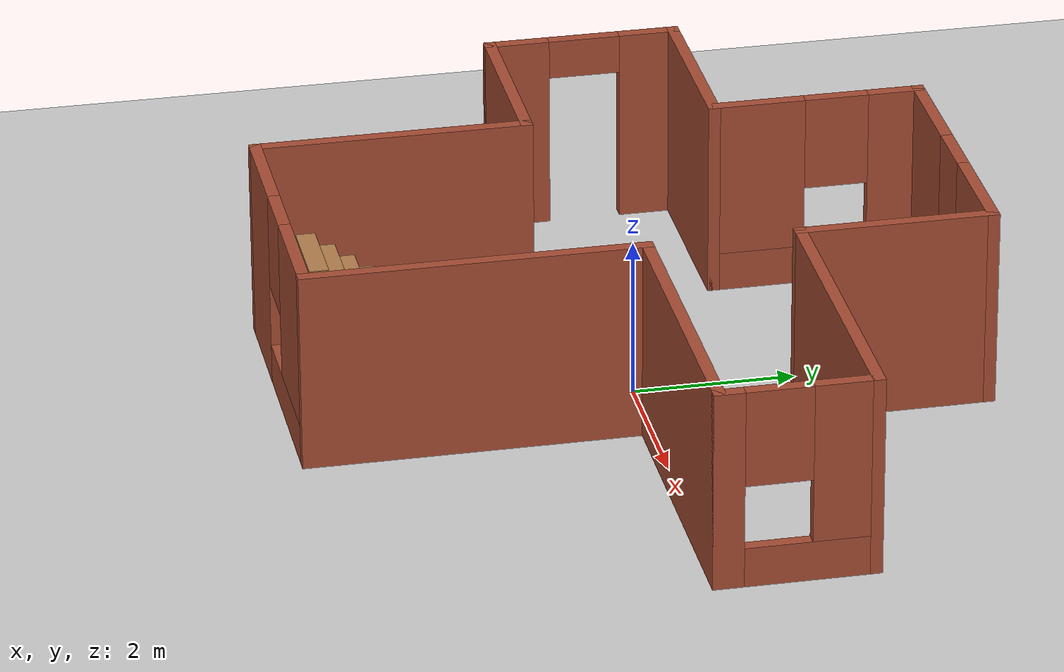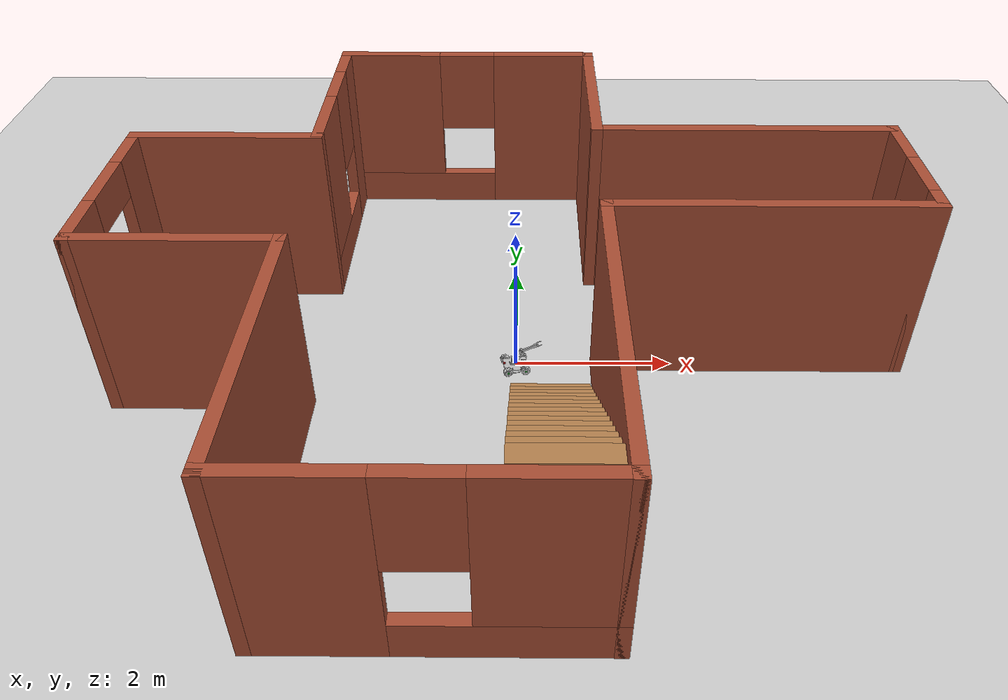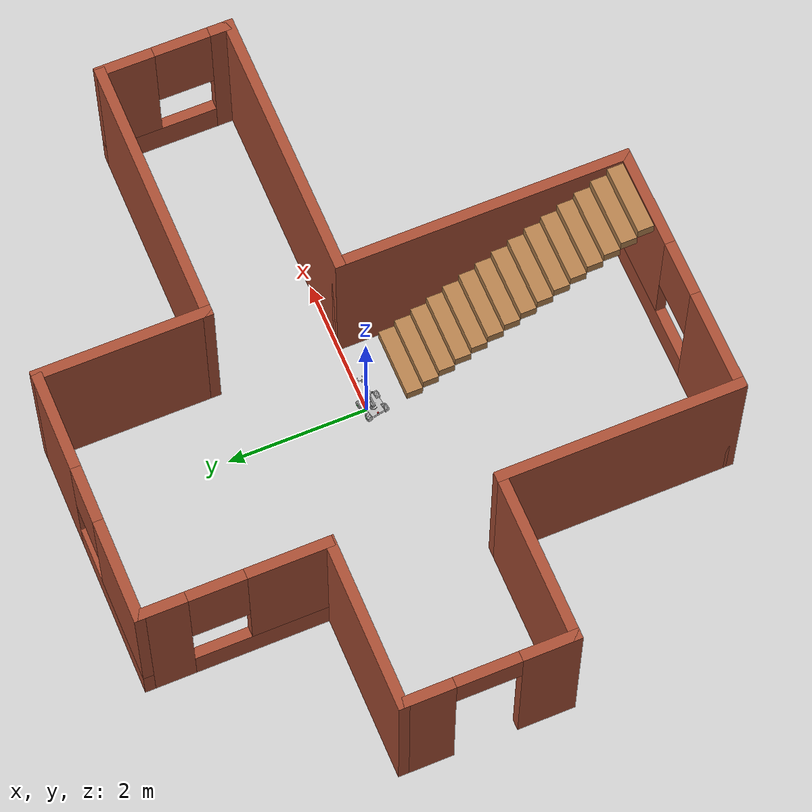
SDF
<sdf version="1.7">
 <world name="default">
  <model name="ground_plane">
   <static>1</static>
   <link name="link">
    <collision name="collision">
     <geometry><plane><normal>0 0 1</normal><size>100 100</size></plane></geometry>
     <surface><friction><ode><mu>100</mu><mu2>50</mu2></ode></friction></surface>
    </collision>
    <visual name="visual">
     <cast_shadows>0</cast_shadows>
     <geometry><plane><normal>0 0 1</normal><size>100 100</size></plane></geometry>
     <material>
      <script><uri>file://media/materials/scripts/gazebo.material</uri><name>Gazebo/Grey</name></script>
     </material>
    </visual>
   </link>
  </model>
  <light name="sun" type="directional">
   <pose>0 0 10 0 -0 0</pose>
   <diffuse>0.8 0.8 0.8 1</diffuse>
   <specular>0.2 0.2 0.2 1</specular>
   <attenuation>
    <range>1000</range>
    <constant>0.9</constant>
    <linear>0.01</linear>
    <quadratic>0.001</quadratic>
   </attenuation>
   <direction>-0.5 0.1 -0.9</direction>
   <spot><inner_angle>0</inner_angle><outer_angle>0</outer_angle><falloff>0</falloff></spot>
  </light>
  <model name="building">
   <pose>-0.00595 -0.002894 0 0 -0 0</pose>
   <link name="Stairs_0">
    <visual name="Stairs_0_Visual_0">
     <pose>0.446582 -0.679804 0.083333 0 -0 0</pose>
     <geometry><box><size>1 0.233333 0.166667</size></box></geometry>
     <material>
      <script><uri>file://media/materials/scripts/gazebo.material</uri><name>Gazebo/Wood</name></script>
      <ambient>1 1 1 1</ambient>
     </material>
     <meta><layer>0</layer></meta>
    </visual>
    <collision name="Stairs_0_Collision_0">
     <geometry><box><size>1 0.233333 0.166667</size></box></geometry>
     <pose>0.446582 -0.679804 0.083333 0 -0 0</pose>
    </collision>
    <visual name="Stairs_0_Visual_1">
     <pose>0.446582 -0.913137 0.25 0 -0 0</pose>
     <geometry><box><size>1 0.233333 0.166667</size></box></geometry>
     <material>
      <script><uri>file://media/materials/scripts/gazebo.material</uri><name>Gazebo/Wood</name></script>
      <ambient>1 1 1 1</ambient>
     </material>
     <meta><layer>0</layer></meta>
    </visual>
    <collision name="Stairs_0_Collision_1">
     <geometry><box><size>1 0.233333 0.166667</size></box></geometry>
     <pose>0.446582 -0.913137 0.25 0 -0 0</pose>
    </collision>
    <visual name="Stairs_0_Visual_2">
     <pose>0.446582 -1.14647 0.416667 0 -0 0</pose>
     <geometry><box><size>1 0.233333 0.166667</size></box></geometry>
     <material>
      <script><uri>file://media/materials/scripts/gazebo.material</uri><name>Gazebo/Wood</name></script>
      <ambient>1 1 1 1</ambient>
     </material>
     <meta><layer>0</layer></meta>
    </visual>
    <collision name="Stairs_0_Collision_2">
     <geometry><box><size>1 0.233333 0.166667</size></box></geometry>
     <pose>0.446582 -1.14647 0.416667 0 -0 0</pose>
    </collision>
    <visual name="Stairs_0_Visual_3">
     <pose>0.446582 -1.3798 0.583333 0 -0 0</pose>
     <geometry><box><size>1 0.233333 0.166667</size></box></geometry>
     <material>
      <script><uri>file://media/materials/scripts/gazebo.material</uri><name>Gazebo/Wood</name></script>
      <ambient>1 1 1 1</ambient>
     </material>
     <meta><layer>0</layer></meta>
    </visual>
    <collision name="Stairs_0_Collision_3">
     <geometry><box><size>1 0.233333 0.166667</size></box></geometry>
     <pose>0.446582 -1.3798 0.583333 0 -0 0</pose>
    </collision>
    <visual name="Stairs_0_Visual_4">
     <pose>0.446582 -1.61314 0.75 0 -0 0</pose>
     <geometry><box><size>1 0.233333 0.166667</size></box></geometry>
     <material>
      <script><uri>file://media/materials/scripts/gazebo.material</uri><name>Gazebo/Wood</name></script>
      <ambient>1 1 1 1</ambient>
     </material>
     <meta><layer>0</layer></meta>
    </visual>
    <collision name="Stairs_0_Collision_4">
     <geometry><box><size>1 0.233333 0.166667</size></box></geometry>
     <pose>0.446582 -1.61314 0.75 0 -0 0</pose>
    </collision>
    <visual name="Stairs_0_Visual_5">
     <pose>0.446582 -1.84647 0.916667 0 -0 0</pose>
     <geometry><box><size>1 0.233333 0.166667</size></box></geometry>
     <material>
      <script><uri>file://media/materials/scripts/gazebo.material</uri><name>Gazebo/Wood</name></script>
      <ambient>1 1 1 1</ambient>
     </material>
     <meta><layer>0</layer></meta>
    </visual>
    <collision name="Stairs_0_Collision_5">
     <geometry><box><size>1 0.233333 0.166667</size></box></geometry>
     <pose>0.446582 -1.84647 0.916667 0 -0 0</pose>
    </collision>
    <visual name="Stairs_0_Visual_6">
     <pose>0.446582 -2.0798 1.08333 0 -0 0</pose>
     <geometry><box><size>1 0.233333 0.166667</size></box></geometry>
     <material>
      <script><uri>file://media/materials/scripts/gazebo.material</uri><name>Gazebo/Wood</name></script>
      <ambient>1 1 1 1</ambient>
     </material>
     <meta><layer>0</layer></meta>
    </visual>
    <collision name="Stairs_0_Collision_6">
     <geometry><box><size>1 0.233333 0.166667</size></box></geometry>
     <pose>0.446582 -2.0798 1.08333 0 -0 0</pose>
    </collision>
    <visual name="Stairs_0_Visual_7">
     <pose>0.446582 -2.31314 1.25 0 -0 0</pose>
     <geometry><box><size>1 0.233333 0.166667</size></box></geometry>
     <material>
      <script><uri>file://media/materials/scripts/gazebo.material</uri><name>Gazebo/Wood</name></script>
      <ambient>1 1 1 1</ambient>
     </material>
     <meta><layer>0</layer></meta>
    </visual>
    <collision name="Stairs_0_Collision_7">
     <geometry><box><size>1 0.233333 0.166667</size></box></geometry>
     <pose>0.446582 -2.31314 1.25 0 -0 0</pose>
    </collision>
    <visual name="Stairs_0_Visual_8">
     <pose>0.446582 -2.54647 1.41667 0 -0 0</pose>
     <geometry><box><size>1 0.233333 0.166667</size></box></geometry>
     <material>
      <script><uri>file://media/materials/scripts/gazebo.material</uri><name>Gazebo/Wood</name></script>
      <ambient>1 1 1 1</ambient>
     </material>
     <meta><layer>0</layer></meta>
    </visual>
    <collision name="Stairs_0_Collision_8">
     <geometry><box><size>1 0.233333 0.166667</size></box></geometry>
     <pose>0.446582 -2.54647 1.41667 0 -0 0</pose>
    </collision>
    <visual name="Stairs_0_Visual_9">
     <pose>0.446582 -2.7798 1.58333 0 -0 0</pose>
     <geometry><box><size>1 0.233333 0.166667</size></box></geometry>
     <material>
      <script><uri>file://media/materials/scripts/gazebo.material</uri><name>Gazebo/Wood</name></script>
      <ambient>1 1 1 1</ambient>
     </material>
     <meta><layer>0</layer></meta>
    </visual>
    <collision name="Stairs_0_Collision_9">
     <geometry><box><size>1 0.233333 0.166667</size></box></geometry>
     <pose>0.446582 -2.7798 1.58333 0 -0 0</pose>
    </collision>
    <visual name="Stairs_0_Visual_10">
     <pose>0.446582 -3.01314 1.75 0 -0 0</pose>
     <geometry><box><size>1 0.233333 0.166667</size></box></geometry>
     <material>
      <script><uri>file://media/materials/scripts/gazebo.material</uri><name>Gazebo/Wood</name></script>
      <ambient>1 1 1 1</ambient>
     </material>
     <meta><layer>0</layer></meta>
    </visual>
    <collision name="Stairs_0_Collision_10">
     <geometry><box><size>1 0.233333 0.166667</size></box></geometry>
     <pose>0.446582 -3.01314 1.75 0 -0 0</pose>
    </collision>
    <visual name="Stairs_0_Visual_11">
     <pose>0.446582 -3.24647 1.91667 0 -0 0</pose>
     <geometry><box><size>1 0.233333 0.166667</size></box></geometry>
     <material>
      <script><uri>file://media/materials/scripts/gazebo.material</uri><name>Gazebo/Wood</name></script>
      <ambient>1 1 1 1</ambient>
     </material>
     <meta><layer>0</layer></meta>
    </visual>
    <collision name="Stairs_0_Collision_11">
     <geometry><box><size>1 0.233333 0.166667</size></box></geometry>
     <pose>0.446582 -3.24647 1.91667 0 -0 0</pose>
    </collision>
    <visual name="Stairs_0_Visual_12">
     <pose>0.446582 -3.4798 2.08333 0 -0 0</pose>
     <geometry><box><size>1 0.233333 0.166667</size></box></geometry>
     <material>
      <script><uri>file://media/materials/scripts/gazebo.material</uri><name>Gazebo/Wood</name></script>
      <ambient>1 1 1 1</ambient>
     </material>
     <meta><layer>0</layer></meta>
    </visual>
    <collision name="Stairs_0_Collision_12">
     <geometry><box><size>1 0.233333 0.166667</size></box></geometry>
     <pose>0.446582 -3.4798 2.08333 0 -0 0</pose>
    </collision>
    <visual name="Stairs_0_Visual_13">
     <pose>0.446582 -3.71314 2.25 0 -0 0</pose>
     <geometry><box><size>1 0.233333 0.166667</size></box></geometry>
     <material>
      <script><uri>file://media/materials/scripts/gazebo.material</uri><name>Gazebo/Wood</name></script>
      <ambient>1 1 1 1</ambient>
     </material>
     <meta><layer>0</layer></meta>
    </visual>
    <collision name="Stairs_0_Collision_13">
     <geometry><box><size>1 0.233333 0.166667</size></box></geometry>
     <pose>0.446582 -3.71314 2.25 0 -0 0</pose>
    </collision>
    <visual name="Stairs_0_Visual_14">
     <pose>0.446582 -3.94647 2.41667 0 -0 0</pose>
     <geometry><box><size>1 0.233333 0.166667</size></box></geometry>
     <material>
      <script><uri>file://media/materials/scripts/gazebo.material</uri><name>Gazebo/Wood</name></script>
      <ambient>1 1 1 1</ambient>
     </material>
     <meta><layer>0</layer></meta>
    </visual>
    <collision name="Stairs_0_Collision_14">
     <geometry><box><size>1 0.233333 0.166667</size></box></geometry>
     <pose>0.446582 -3.94647 2.41667 0 -0 0</pose>
    </collision>
   </link>
   <link name="Wall_12">
    <collision name="Wall_12_Collision">
     <geometry><box><size>3.5 0.15 2.5</size></box></geometry>
     <pose>0 0 1.25 0 -0 0</pose>
    </collision>
    <visual name="Wall_12_Visual">
     <pose>0 0 1.25 0 -0 0</pose>
     <geometry><box><size>3.5 0.15 2.5</size></box></geometry>
     <material>
      <script><uri>file://media/materials/scripts/gazebo.material</uri><name>Gazebo/Bricks</name></script>
      <ambient>1 1 1 1</ambient>
     </material>
     <meta><layer>0</layer></meta>
    </visual>
    <pose>-2.55 -2.475 0 0 -0 -1.5708</pose>
   </link>
   <link name="Wall_13">
    <pose>-0.75 -4.15 0 0 -0 0</pose>
    <visual name="Wall_13_Visual_0">
     <pose>-1.14061 0 1.25 0 -0 0</pose>
     <geometry><box><size>1.46879 0.15 2.5</size></box></geometry>
     <material>
      <script><uri>file://media/materials/scripts/gazebo.material</uri><name>Gazebo/Bricks</name></script>
      <ambient>1 1 1 1</ambient>
     </material>
     <meta><layer>0</layer></meta>
    </visual>
    <collision name="Wall_13_Collision_0">
     <geometry><box><size>1.46879 0.15 2.5</size></box></geometry>
     <pose>-1.14061 0 1.25 0 -0 0</pose>
    </collision>
    <visual name="Wall_13_Visual_1">
     <pose>0.734395 0 0.25 0 -0 0</pose>
     <geometry><box><size>2.28121 0.15 0.5</size></box></geometry>
     <material>
      <script><uri>file://media/materials/scripts/gazebo.material</uri><name>Gazebo/Bricks</name></script>
      <ambient>1 1 1 1</ambient>
     </material>
     <meta><layer>0</layer></meta>
    </visual>
    <collision name="Wall_13_Collision_1">
     <geometry><box><size>2.28121 0.15 0.5</size></box></geometry>
     <pose>0.734395 0 0.25 0 -0 0</pose>
    </collision>
    <visual name="Wall_13_Visual_2">
     <pose>1.1344 0 1.5 0 -0 0</pose>
     <geometry><box><size>1.48121 0.15 2</size></box></geometry>
     <material>
      <script><uri>file://media/materials/scripts/gazebo.material</uri><name>Gazebo/Bricks</name></script>
      <ambient>1 1 1 1</ambient>
     </material>
     <meta><layer>0</layer></meta>
    </visual>
    <collision name="Wall_13_Collision_2">
     <geometry><box><size>1.48121 0.15 2</size></box></geometry>
     <pose>1.1344 0 1.5 0 -0 0</pose>
    </collision>
    <visual name="Wall_13_Visual_3">
     <pose>-0.006209 0 1.9 0 -0 0</pose>
     <geometry><box><size>0.8 0.15 1.2</size></box></geometry>
     <material>
      <script><uri>file://media/materials/scripts/gazebo.material</uri><name>Gazebo/Bricks</name></script>
      <ambient>1 1 1 1</ambient>
     </material>
     <meta><layer>0</layer></meta>
    </visual>
    <collision name="Wall_13_Collision_3">
     <geometry><box><size>0.8 0.15 1.2</size></box></geometry>
     <pose>-0.006209 0 1.9 0 -0 0</pose>
    </collision>
   </link>
   <link name="Wall_14">
    <collision name="Wall_14_Collision">
     <geometry><box><size>4.25 0.15 2.5</size></box></geometry>
     <pose>0 0 1.25 0 -0 0</pose>
    </collision>
    <visual name="Wall_14_Visual">
     <pose>0 0 1.25 0 -0 0</pose>
     <geometry><box><size>4.25 0.15 2.5</size></box></geometry>
     <material>
      <script><uri>file://media/materials/scripts/gazebo.material</uri><name>Gazebo/Bricks</name></script>
      <ambient>1 1 1 1</ambient>
     </material>
     <meta><layer>0</layer></meta>
    </visual>
    <pose>1.05 -2.1 0 0 -0 1.5708</pose>
   </link>
   <link name="Wall_15">
    <collision name="Wall_15_Collision">
     <geometry><box><size>4 0.15 2.5</size></box></geometry>
     <pose>0 0 1.25 0 -0 0</pose>
    </collision>
    <visual name="Wall_15_Visual">
     <pose>0 0 1.25 0 -0 0</pose>
     <geometry><box><size>4 0.15 2.5</size></box></geometry>
     <material>
      <script><uri>file://media/materials/scripts/gazebo.material</uri><name>Gazebo/Bricks</name></script>
      <ambient>1 1 1 1</ambient>
     </material>
     <meta><layer>0</layer></meta>
    </visual>
    <pose>2.975 -0.05 0 0 -0 0</pose>
   </link>
   <link name="Wall_16">
    <pose>4.9 0.875 0 0 -0 1.5708</pose>
    <visual name="Wall_16_Visual_0">
     <pose>-0.813709 0 1.25 0 -0 0</pose>
     <geometry><box><size>0.372581 0.15 2.5</size></box></geometry>
     <material>
      <script><uri>file://media/materials/scripts/gazebo.material</uri><name>Gazebo/Bricks</name></script>
      <ambient>1 1 1 1</ambient>
     </material>
     <meta><layer>0</layer></meta>
    </visual>
    <collision name="Wall_16_Collision_0">
     <geometry><box><size>0.372581 0.15 2.5</size></box></geometry>
     <pose>-0.813709 0 1.25 0 -0 0</pose>
    </collision>
    <visual name="Wall_16_Visual_1">
     <pose>0.186291 0 0.25 0 -0 0</pose>
     <geometry><box><size>1.62742 0.15 0.5</size></box></geometry>
     <material>
      <script><uri>file://media/materials/scripts/gazebo.material</uri><name>Gazebo/Bricks</name></script>
      <ambient>1 1 1 1</ambient>
     </material>
     <meta><layer>0</layer></meta>
    </visual>
    <collision name="Wall_16_Collision_1">
     <geometry><box><size>1.62742 0.15 0.5</size></box></geometry>
     <pose>0.186291 0 0.25 0 -0 0</pose>
    </collision>
    <visual name="Wall_16_Visual_2">
     <pose>0.586291 0 1.5 0 -0 0</pose>
     <geometry><box><size>0.827419 0.15 2</size></box></geometry>
     <material>
      <script><uri>file://media/materials/scripts/gazebo.material</uri><name>Gazebo/Bricks</name></script>
      <ambient>1 1 1 1</ambient>
     </material>
     <meta><layer>0</layer></meta>
    </visual>
    <collision name="Wall_16_Collision_2">
     <geometry><box><size>0.827419 0.15 2</size></box></geometry>
     <pose>0.586291 0 1.5 0 -0 0</pose>
    </collision>
    <visual name="Wall_16_Visual_3">
     <pose>-0.227419 0 1.9 0 -0 0</pose>
     <geometry><box><size>0.8 0.15 1.2</size></box></geometry>
     <material>
      <script><uri>file://media/materials/scripts/gazebo.material</uri><name>Gazebo/Bricks</name></script>
      <ambient>1 1 1 1</ambient>
     </material>
     <meta><layer>0</layer></meta>
    </visual>
    <collision name="Wall_16_Collision_3">
     <geometry><box><size>0.8 0.15 1.2</size></box></geometry>
     <pose>-0.227419 0 1.9 0 -0 0</pose>
    </collision>
   </link>
   <link name="Wall_17">
    <collision name="Wall_17_Collision">
     <geometry><box><size>4 0.15 2.5</size></box></geometry>
     <pose>0 0 1.25 0 -0 0</pose>
    </collision>
    <visual name="Wall_17_Visual">
     <pose>0 0 1.25 0 -0 0</pose>
     <geometry><box><size>4 0.15 2.5</size></box></geometry>
     <material>
      <script><uri>file://media/materials/scripts/gazebo.material</uri><name>Gazebo/Bricks</name></script>
      <ambient>1 1 1 1</ambient>
     </material>
     <meta><layer>0</layer></meta>
    </visual>
    <pose>2.975 1.8 0 0 -0 3.14159</pose>
   </link>
   <link name="Wall_18">
    <collision name="Wall_18_Collision">
     <geometry><box><size>2.5 0.15 2.5</size></box></geometry>
     <pose>0 0 1.25 0 -0 0</pose>
    </collision>
    <visual name="Wall_18_Visual">
     <pose>0 0 1.25 0 -0 0</pose>
     <geometry><box><size>2.5 0.15 2.5</size></box></geometry>
     <material>
      <script><uri>file://media/materials/scripts/gazebo.material</uri><name>Gazebo/Bricks</name></script>
      <ambient>1 1 1 1</ambient>
     </material>
     <meta><layer>0</layer></meta>
    </visual>
    <pose>1.05 2.975 0 0 -0 1.5708</pose>
   </link>
   <link name="Wall_19">
    <pose>-0.75 4.15 0 0 -0 3.14159</pose>
    <visual name="Wall_19_Visual_0">
     <pose>-1.1344 0 1.25 0 -0 0</pose>
     <geometry><box><size>1.48121 0.15 2.5</size></box></geometry>
     <material>
      <script><uri>file://media/materials/scripts/gazebo.material</uri><name>Gazebo/Bricks</name></script>
      <ambient>1 1 1 1</ambient>
     </material>
     <meta><layer>0</layer></meta>
    </visual>
    <collision name="Wall_19_Collision_0">
     <geometry><box><size>1.48121 0.15 2.5</size></box></geometry>
     <pose>-1.1344 0 1.25 0 -0 0</pose>
    </collision>
    <visual name="Wall_19_Visual_1">
     <pose>0.740605 0 0.25 0 -0 0</pose>
     <geometry><box><size>2.26879 0.15 0.5</size></box></geometry>
     <material>
      <script><uri>file://media/materials/scripts/gazebo.material</uri><name>Gazebo/Bricks</name></script>
      <ambient>1 1 1 1</ambient>
     </material>
     <meta><layer>0</layer></meta>
    </visual>
    <collision name="Wall_19_Collision_1">
     <geometry><box><size>2.26879 0.15 0.5</size></box></geometry>
     <pose>0.740605 0 0.25 0 -0 0</pose>
    </collision>
    <visual name="Wall_19_Visual_2">
     <pose>1.14061 0 1.5 0 -0 0</pose>
     <geometry><box><size>1.46879 0.15 2</size></box></geometry>
     <material>
      <script><uri>file://media/materials/scripts/gazebo.material</uri><name>Gazebo/Bricks</name></script>
      <ambient>1 1 1 1</ambient>
     </material>
     <meta><layer>0</layer></meta>
    </visual>
    <collision name="Wall_19_Collision_2">
     <geometry><box><size>1.46879 0.15 2</size></box></geometry>
     <pose>1.14061 0 1.5 0 -0 0</pose>
    </collision>
    <visual name="Wall_19_Visual_3">
     <pose>0.006209 0 1.9 0 -0 0</pose>
     <geometry><box><size>0.8 0.15 1.2</size></box></geometry>
     <material>
      <script><uri>file://media/materials/scripts/gazebo.material</uri><name>Gazebo/Bricks</name></script>
      <ambient>1 1 1 1</ambient>
     </material>
     <meta><layer>0</layer></meta>
    </visual>
    <collision name="Wall_19_Collision_3">
     <geometry><box><size>0.8 0.15 1.2</size></box></geometry>
     <pose>0.006209 0 1.9 0 -0 0</pose>
    </collision>
   </link>
   <link name="Wall_20">
    <pose>-2.55 2.8633 0 0 -0 -1.5708</pose>
    <visual name="Wall_20_Visual_0">
     <pose>-0.998913 0 1.25 0 -0 0</pose>
     <geometry><box><size>0.725574 0.15 2.5</size></box></geometry>
     <material>
      <script><uri>file://media/materials/scripts/gazebo.material</uri><name>Gazebo/Bricks</name></script>
      <ambient>1 1 1 1</ambient>
     </material>
     <meta><layer>0</layer></meta>
    </visual>
    <collision name="Wall_20_Collision_0">
     <geometry><box><size>0.725574 0.15 2.5</size></box></geometry>
     <pose>-0.998913 0 1.25 0 -0 0</pose>
    </collision>
    <visual name="Wall_20_Visual_1">
     <pose>0.362787 0 0.25 0 -0 0</pose>
     <geometry><box><size>1.99782 0.15 0.5</size></box></geometry>
     <material>
      <script><uri>file://media/materials/scripts/gazebo.material</uri><name>Gazebo/Bricks</name></script>
      <ambient>1 1 1 1</ambient>
     </material>
     <meta><layer>0</layer></meta>
    </visual>
    <collision name="Wall_20_Collision_1">
     <geometry><box><size>1.99782 0.15 0.5</size></box></geometry>
     <pose>0.362787 0 0.25 0 -0 0</pose>
    </collision>
    <visual name="Wall_20_Visual_2">
     <pose>0.762787 0 1.5 0 -0 0</pose>
     <geometry><box><size>1.19782 0.15 2</size></box></geometry>
     <material>
      <script><uri>file://media/materials/scripts/gazebo.material</uri><name>Gazebo/Bricks</name></script>
      <ambient>1 1 1 1</ambient>
     </material>
     <meta><layer>0</layer></meta>
    </visual>
    <collision name="Wall_20_Collision_2">
     <geometry><box><size>1.19782 0.15 2</size></box></geometry>
     <pose>0.762787 0 1.5 0 -0 0</pose>
    </collision>
    <visual name="Wall_20_Visual_3">
     <pose>-0.236125 0 1.9 0 -0 0</pose>
     <geometry><box><size>0.8 0.15 1.2</size></box></geometry>
     <material>
      <script><uri>file://media/materials/scripts/gazebo.material</uri><name>Gazebo/Bricks</name></script>
      <ambient>1 1 1 1</ambient>
     </material>
     <meta><layer>0</layer></meta>
    </visual>
    <collision name="Wall_20_Collision_3">
     <geometry><box><size>0.8 0.15 1.2</size></box></geometry>
     <pose>-0.236125 0 1.9 0 -0 0</pose>
    </collision>
   </link>
   <link name="Wall_7">
    <collision name="Wall_7_Collision">
     <geometry><box><size>2.5 0.15 2.5</size></box></geometry>
     <pose>0 0 1.25 0 -0 0</pose>
    </collision>
    <visual name="Wall_7_Visual">
     <pose>0 0 1.25 0 -0 0</pose>
     <geometry><box><size>2.5 0.15 2.5</size></box></geometry>
     <material>
      <script><uri>file://media/materials/scripts/gazebo.material</uri><name>Gazebo/Bricks</name></script>
      <ambient>1 1 1 1</ambient>
     </material>
     <meta><layer>0</layer></meta>
    </visual>
    <pose>-3.725 1.55 0 0 -0 3.14159</pose>
   </link>
   <link name="Wall_8">
    <pose>-4.9 0.375 0 0 -0 -1.5708</pose>
    <visual name="Wall_8_Visual_0">
     <pose>-0.859072 0 1.25 0 -0 0</pose>
     <geometry><box><size>0.781856 0.15 2.5</size></box></geometry>
     <material>
      <script><uri>file://media/materials/scripts/gazebo.material</uri><name>Gazebo/Bricks</name></script>
      <ambient>1 1 1 1</ambient>
     </material>
     <meta><layer>0</layer></meta>
    </visual>
    <collision name="Wall_8_Collision_0">
     <geometry><box><size>0.781856 0.15 2.5</size></box></geometry>
     <pose>-0.859072 0 1.25 0 -0 0</pose>
    </collision>
    <visual name="Wall_8_Visual_1">
     <pose>0.840928 0 1.25 0 -0 0</pose>
     <geometry><box><size>0.818144 0.15 2.5</size></box></geometry>
     <material>
      <script><uri>file://media/materials/scripts/gazebo.material</uri><name>Gazebo/Bricks</name></script>
      <ambient>1 1 1 1</ambient>
     </material>
     <meta><layer>0</layer></meta>
    </visual>
    <collision name="Wall_8_Collision_1">
     <geometry><box><size>0.818144 0.15 2.5</size></box></geometry>
     <pose>0.840928 0 1.25 0 -0 0</pose>
    </collision>
    <visual name="Wall_8_Visual_2">
     <pose>-0.018144 0 2.25 0 -0 0</pose>
     <geometry><box><size>0.9 0.15 0.5</size></box></geometry>
     <material>
      <script><uri>file://media/materials/scripts/gazebo.material</uri><name>Gazebo/Bricks</name></script>
      <ambient>1 1 1 1</ambient>
     </material>
     <meta><layer>0</layer></meta>
    </visual>
    <collision name="Wall_8_Collision_2">
     <geometry><box><size>0.9 0.15 0.5</size></box></geometry>
     <pose>-0.018144 0 2.25 0 -0 0</pose>
    </collision>
   </link>
   <link name="Wall_9">
    <collision name="Wall_9_Collision">
     <geometry><box><size>2.5 0.15 2.5</size></box></geometry>
     <pose>0 0 1.25 0 -0 0</pose>
    </collision>
    <visual name="Wall_9_Visual">
     <pose>0 0 1.25 0 -0 0</pose>
     <geometry><box><size>2.5 0.15 2.5</size></box></geometry>
     <material>
      <script><uri>file://media/materials/scripts/gazebo.material</uri><name>Gazebo/Bricks</name></script>
      <ambient>1 1 1 1</ambient>
     </material>
     <meta><layer>0</layer></meta>
    </visual>
    <pose>-3.725 -0.8 0 0 -0 0</pose>
   </link>
   <static>1</static>
  </model>
  <gravity>0 0 -9.8</gravity>
  <magnetic_field>6e-06 2.3e-05 -4.2e-05</magnetic_field>
  <atmosphere type="adiabatic"/>
  <physics type="ode">
   <max_step_size>0.001</max_step_size>
   <real_time_factor>1</real_time_factor>
   <real_time_update_rate>1000</real_time_update_rate>
  </physics>
  <scene><ambient>0.4 0.4 0.4 1</ambient><background>0.7 0.7 0.7 1</background><shadows>1</shadows></scene>
  <spherical_coordinates>
   <surface_model>EARTH_WGS84</surface_model>
   <latitude_deg>0</latitude_deg>
   <longitude_deg>0</longitude_deg>
   <elevation>0</elevation>
   <heading_deg>0</heading_deg>
  </spherical_coordinates>
  <model name="mecanum_car">
   <link name="base_footprint">
    <inertial>
     <pose>-0.002364 8.5e-05 0.032873 0 -0 0</pose>
     <mass>2.98294</mass>
     <inertia>
      <ixx>0.0118534</ixx>
      <ixy>1.11558e-07</ixy>
      <ixz>-0.00021805</ixz>
      <iyy>0.0202701</iyy>
      <iyz>1.21963e-06</iyz>
      <izz>0.0274516</izz>
     </inertia>
    </inertial>
    <collision name="base_footprint_fixed_joint_lump__base_link_collision">
     <pose>0 0 0.037 0 -0 0</pose>
     <geometry>
      <mesh><scale>1 1 1</scale><uri>/home/tuan/catkin_ws/src/midterm/urdf/meshes/base_link.STL</uri></mesh>
     </geometry>
    </collision>
    <collision name="base_footprint_fixed_joint_lump__camera_collision_1">
     <pose>-0.14 0 0.062 0 -0 3.14</pose>
     <geometry><box><size>0.02 0.02 0.02</size></box></geometry>
    </collision>
    <collision name="base_footprint_fixed_joint_lump__lindar_collision_2">
     <pose>0.108 0 0.079 0 -0 0</pose>
     <geometry>
      <mesh><scale>1 1 1</scale><uri>/home/tuan/catkin_ws/src/midterm/urdf/meshes/lindar.STL</uri></mesh>
     </geometry>
    </collision>
    <visual name="base_footprint_fixed_joint_lump__base_link_visual">
     <pose>0 0 0.037 0 -0 0</pose>
     <geometry>
      <mesh><scale>1 1 1</scale><uri>/home/tuan/catkin_ws/src/midterm/urdf/meshes/base_link.STL</uri></mesh>
     </geometry>
    </visual>
    <visual name="base_footprint_fixed_joint_lump__camera_visual_1">
     <pose>-0.14 0 0.062 0 -0 3.14</pose>
     <geometry><box><size>0.02 0.02 0.02</size></box></geometry>
     <material>
      <script><name>Gazebo/Red</name><uri>file://media/materials/scripts/gazebo.material</uri></script>
     </material>
    </visual>
    <visual name="base_footprint_fixed_joint_lump__lindar_visual_2">
     <pose>0.108 0 0.079 0 -0 0</pose>
     <geometry>
      <mesh><scale>1 1 1</scale><uri>/home/tuan/catkin_ws/src/midterm/urdf/meshes/lindar.STL</uri></mesh>
     </geometry>
    </visual>
    <sensor name="camera1" type="camera">
     <update_rate>30</update_rate>
     <camera name="head">
      <horizontal_fov>1.39626</horizontal_fov>
      <image><width>800</width><height>800</height><format>R8G8B8</format></image>
      <clip><near>0.02</near><far>300</far></clip>
     </camera>
     <plugin name="camera_controller" filename="libgazebo_ros_camera.so">
      <robotNamespace>/midterm</robotNamespace>
      <alwaysOn>1</alwaysOn>
      <updateRate>0.0</updateRate>
      <cameraName>camera</cameraName>
      <imageTopicName>rgb/image_raw</imageTopicName>
      <cameraInfoTopicName>rgb/camera_info</cameraInfoTopicName>
      <frameName>camera</frameName>
      <hackBaseline>0.07</hackBaseline>
      <distortionK1>0.0</distortionK1>
      <distortionK2>0.0</distortionK2>
      <distortionK3>0.0</distortionK3>
      <distortionT1>0.0</distortionT1>
      <distortionT2>0.0</distortionT2>
     </plugin>
     <pose>-0.14 0 0.062 0 -0 3.14</pose>
    </sensor>
    <sensor name="lidar_sensor" type="ray">
     <visualize>1</visualize>
     <update_rate>30</update_rate>
     <ray>
      <scan>
       <horizontal>
        <samples>720</samples>
        <resolution>1</resolution>
        <min_angle>-1.5708</min_angle>
        <max_angle>1.5708</max_angle>
       </horizontal>
       <vertical><samples>1</samples><min_angle>0</min_angle><max_angle>0</max_angle></vertical>
      </scan>
      <range><min>0.1</min><max>30</max><resolution>0.01</resolution></range>
      <noise><type>gaussian</type><mean>0</mean><stddev>0.01</stddev></noise>
     </ray>
     <plugin name="gazebo_ros_laser" filename="libgazebo_ros_laser.so">
      <topicName>/scan</topicName>
      <frameName>lindar</frameName>
      <robotNamespace>/</robotNamespace>
     </plugin>
     <pose>0.108 0 0.079 0 -0 0</pose>
    </sensor>
   </link>
   <joint name="Left_backward_joint1" type="revolute">
    <pose relative_to="base_footprint">-0.1135 0.165 0.0191 -1.5708 0 0</pose>
    <parent>base_footprint</parent>
    <child>Left_backward_wheel1</child>
    <axis>
     <xyz>0 0 1</xyz>
     <limit><lower>-1e+16</lower><upper>1e+16</upper></limit>
     <dynamics>
      <damping>0.1</damping>
      <friction>0.1</friction>
      <spring_reference>0</spring_reference>
      <spring_stiffness>0</spring_stiffness>
     </dynamics>
    </axis>
   </joint>
   <link name="Left_backward_wheel1">
    <pose relative_to="Left_backward_joint1">0 0 0 0 -0 0</pose>
    <inertial>
     <pose>-0 0 -0.031896 0 -0 0</pose>
     <mass>0.773869</mass>
     <inertia>
      <ixx>0.000329331</ixx>
      <ixy>-1.08873e-16</ixy>
      <ixz>-3.29278e-17</ixz>
      <iyy>0.000329331</iyy>
      <iyz>-9.46584e-17</iyz>
      <izz>0.000411078</izz>
     </inertia>
    </inertial>
    <collision name="Left_backward_wheel1_collision">
     <geometry><cylinder><length>0.009</length><radius>0.014</radius></cylinder></geometry>
     <surface>
      <contact><ode><kp>1e+06</kp><kd>100</kd><max_vel>3</max_vel><min_depth>0</min_depth></ode></contact>
      <friction><ode><mu>1</mu><mu2>1</mu2></ode></friction>
     </surface>
    </collision>
    <collision name="Left_backward_wheel1_fixed_joint_lump__Left_backward_wheel_collision_1">
     <geometry>
      <mesh>
       <scale>1 1 1</scale>
       <uri>/home/tuan/catkin_ws/src/midterm/urdf/meshes/Right_backward_wheel.STL</uri>
      </mesh>
     </geometry>
    </collision>
    <visual name="Left_backward_wheel1_visual">
     <geometry><cylinder><length>0.009</length><radius>0.014</radius></cylinder></geometry>
     <material>
      <script><name>Gazebo/Green</name><uri>file://media/materials/scripts/gazebo.material</uri></script>
     </material>
    </visual>
    <visual name="Left_backward_wheel1_fixed_joint_lump__Left_backward_wheel_visual_1">
     <geometry>
      <mesh>
       <scale>1 1 1</scale>
       <uri>/home/tuan/catkin_ws/src/midterm/urdf/meshes/Right_backward_wheel.STL</uri>
      </mesh>
     </geometry>
    </visual>
   </link>
   <joint name="Left_forward_joint1" type="revolute">
    <pose relative_to="base_footprint">0.1135 0.165 0.0191 -1.5708 0 0</pose>
    <parent>base_footprint</parent>
    <child>Left_forward_wheel1</child>
    <axis>
     <xyz>0 0 1</xyz>
     <limit><lower>-1e+16</lower><upper>1e+16</upper></limit>
     <dynamics>
      <damping>0.1</damping>
      <friction>0.1</friction>
      <spring_reference>0</spring_reference>
      <spring_stiffness>0</spring_stiffness>
     </dynamics>
    </axis>
   </joint>
   <link name="Left_forward_wheel1">
    <pose relative_to="Left_forward_joint1">0 0 0 0 -0 0</pose>
    <inertial>
     <pose>0 -0 -0.031896 0 -0 0</pose>
     <mass>0.773869</mass>
     <inertia>
      <ixx>0.000329331</ixx>
      <ixy>2.0687e-16</ixy>
      <ixz>5.59867e-16</ixz>
      <iyy>0.000329331</iyy>
      <iyz>3.07173e-16</iyz>
      <izz>0.000411078</izz>
     </inertia>
    </inertial>
    <collision name="Left_forward_wheel1_collision">
     <geometry><cylinder><length>0.009</length><radius>0.014</radius></cylinder></geometry>
     <surface>
      <contact><ode><kp>1e+06</kp><kd>100</kd><max_vel>3</max_vel><min_depth>0</min_depth></ode></contact>
      <friction><ode><mu>1</mu><mu2>1</mu2></ode></friction>
     </surface>
    </collision>
    <collision name="Left_forward_wheel1_fixed_joint_lump__Left_forward_wheel_collision_1">
     <geometry>
      <mesh>
       <scale>1 1 1</scale>
       <uri>/home/tuan/catkin_ws/src/midterm/urdf/meshes/Left_forward_wheel.STL</uri>
      </mesh>
     </geometry>
    </collision>
    <visual name="Left_forward_wheel1_visual">
     <geometry><cylinder><length>0.009</length><radius>0.014</radius></cylinder></geometry>
     <material>
      <script><name>Gazebo/Green</name><uri>file://media/materials/scripts/gazebo.material</uri></script>
     </material>
    </visual>
    <visual name="Left_forward_wheel1_fixed_joint_lump__Left_forward_wheel_visual_1">
     <geometry>
      <mesh>
       <scale>1 1 1</scale>
       <uri>/home/tuan/catkin_ws/src/midterm/urdf/meshes/Left_forward_wheel.STL</uri>
      </mesh>
     </geometry>
    </visual>
   </link>
   <joint name="Right_backward_joint1" type="revolute">
    <pose relative_to="base_footprint">-0.1135 -0.165 0.0191 1.5708 -0 0</pose>
    <parent>base_footprint</parent>
    <child>Right_backward_wheel1</child>
    <axis>
     <xyz>0 0 -1</xyz>
     <limit><lower>-1e+16</lower><upper>1e+16</upper></limit>
     <dynamics>
      <damping>0.1</damping>
      <friction>0.1</friction>
      <spring_reference>0</spring_reference>
      <spring_stiffness>0</spring_stiffness>
     </dynamics>
    </axis>
   </joint>
   <link name="Right_backward_wheel1">
    <pose relative_to="Right_backward_joint1">0 0 0 0 -0 0</pose>
    <inertial>
     <pose>0 0 -0.031896 0 -0 0</pose>
     <mass>0.773869</mass>
     <inertia>
      <ixx>0.000329331</ixx>
      <ixy>1.56887e-16</ixy>
      <ixz>-1.0235e-16</ixz>
      <iyy>0.000329331</iyy>
      <iyz>-2.49288e-17</iyz>
      <izz>0.000411078</izz>
     </inertia>
    </inertial>
    <collision name="Right_backward_wheel1_collision">
     <geometry><cylinder><length>0.009</length><radius>0.014</radius></cylinder></geometry>
     <surface>
      <contact><ode><kp>1e+06</kp><kd>100</kd><max_vel>3</max_vel><min_depth>0</min_depth></ode></contact>
      <friction><ode><mu>1</mu><mu2>1</mu2></ode></friction>
     </surface>
    </collision>
    <collision name="Right_backward_wheel1_fixed_joint_lump__Right_backward_wheel_collision_1">
     <geometry>
      <mesh>
       <scale>1 1 1</scale>
       <uri>/home/tuan/catkin_ws/src/midterm/urdf/meshes/Left_backward_wheel.STL</uri>
      </mesh>
     </geometry>
    </collision>
    <visual name="Right_backward_wheel1_visual">
     <geometry><cylinder><length>0.009</length><radius>0.014</radius></cylinder></geometry>
     <material>
      <script><name>Gazebo/Green</name><uri>file://media/materials/scripts/gazebo.material</uri></script>
     </material>
    </visual>
    <visual name="Right_backward_wheel1_fixed_joint_lump__Right_backward_wheel_visual_1">
     <geometry>
      <mesh>
       <scale>1 1 1</scale>
       <uri>/home/tuan/catkin_ws/src/midterm/urdf/meshes/Left_backward_wheel.STL</uri>
      </mesh>
     </geometry>
    </visual>
   </link>
   <joint name="Right_forward_joint1" type="revolute">
    <pose relative_to="base_footprint">0.1135 -0.165 0.0191 1.5708 -0 0</pose>
    <parent>base_footprint</parent>
    <child>Right_forward_wheel1</child>
    <axis>
     <xyz>0 0 -1</xyz>
     <limit><lower>-1e+16</lower><upper>1e+16</upper></limit>
     <dynamics>
      <damping>0.1</damping>
      <friction>0.1</friction>
      <spring_reference>0</spring_reference>
      <spring_stiffness>0</spring_stiffness>
     </dynamics>
    </axis>
   </joint>
   <link name="Right_forward_wheel1">
    <pose relative_to="Right_forward_joint1">0 0 0 0 -0 0</pose>
    <inertial>
     <pose>-0 0 -0.031896 0 -0 0</pose>
     <mass>0.773869</mass>
     <inertia>
      <ixx>0.000329331</ixx>
      <ixy>-6.39082e-17</ixy>
      <ixz>-7.64723e-17</ixz>
      <iyy>0.000329331</iyy>
      <iyz>-4.81514e-17</iyz>
      <izz>0.000411078</izz>
     </inertia>
    </inertial>
    <collision name="Right_forward_wheel1_collision">
     <geometry><cylinder><length>0.009</length><radius>0.014</radius></cylinder></geometry>
     <surface>
      <contact><ode><kp>1e+06</kp><kd>100</kd><max_vel>3</max_vel><min_depth>0</min_depth></ode></contact>
      <friction><ode><mu>1</mu><mu2>1</mu2></ode></friction>
     </surface>
    </collision>
    <collision name="Right_forward_wheel1_fixed_joint_lump__Right_forward_wheel_collision_1">
     <geometry>
      <mesh>
       <scale>1 1 1</scale>
       <uri>/home/tuan/catkin_ws/src/midterm/urdf/meshes/Right_forward_wheel.STL</uri>
      </mesh>
     </geometry>
    </collision>
    <visual name="Right_forward_wheel1_visual">
     <geometry><cylinder><length>0.009</length><radius>0.014</radius></cylinder></geometry>
     <material>
      <script><name>Gazebo/Green</name><uri>file://media/materials/scripts/gazebo.material</uri></script>
     </material>
    </visual>
    <visual name="Right_forward_wheel1_fixed_joint_lump__Right_forward_wheel_visual_1">
     <geometry>
      <mesh>
       <scale>1 1 1</scale>
       <uri>/home/tuan/catkin_ws/src/midterm/urdf/meshes/Right_forward_wheel.STL</uri>
      </mesh>
     </geometry>
    </visual>
   </link>
   <joint name="link1_joint1" type="revolute">
    <pose relative_to="base_footprint">-0.025 0.0295 0.122 1.5708 -0.85308 -3.14159</pose>
    <parent>base_footprint</parent>
    <child>link11</child>
    <axis>
     <xyz>0 0 1</xyz>
     <limit><lower>0</lower><upper>0.6</upper><effort>10</effort><velocity>2</velocity></limit>
     <dynamics>
      <damping>0.1</damping>
      <friction>0.1</friction>
      <spring_reference>0</spring_reference>
      <spring_stiffness>0</spring_stiffness>
     </dynamics>
    </axis>
   </joint>
   <link name="link11">
    <pose relative_to="link1_joint1">0 0 0 0 -0 0</pose>
    <inertial>
     <pose>0.013013 0.08892 -0.029677 0 -0 0</pose>
     <mass>0.328973</mass>
     <inertia>
      <ixx>0.00108956</ixx>
      <ixy>-0.000149157</ixy>
      <ixz>1.98813e-07</ixz>
      <iyy>9.21934e-05</iyy>
      <iyz>1.3585e-06</iyz>
      <izz>0.00113197</izz>
     </inertia>
    </inertial>
    <collision name="link11_collision">
     <geometry><cylinder><length>0.015</length><radius>0.009</radius></cylinder></geometry>
     <surface><friction><ode><mu>0.2</mu><mu2>0.2</mu2></ode></friction></surface>
    </collision>
    <collision name="link11_fixed_joint_lump__link1_collision_1">
     <geometry>
      <mesh><scale>1 1 1</scale><uri>/home/tuan/catkin_ws/src/midterm/urdf/meshes/link1.STL</uri></mesh>
     </geometry>
    </collision>
    <visual name="link11_visual">
     <geometry><cylinder><length>0.015</length><radius>0.009</radius></cylinder></geometry>
     <material>
      <script><name>Gazebo/Black</name><uri>file://media/materials/scripts/gazebo.material</uri></script>
     </material>
    </visual>
    <visual name="link11_fixed_joint_lump__link1_visual_1">
     <geometry>
      <mesh><scale>1 1 1</scale><uri>/home/tuan/catkin_ws/src/midterm/urdf/meshes/link1.STL</uri></mesh>
     </geometry>
    </visual>
   </link>
   <joint name="link2_joint1" type="revolute">
    <pose relative_to="link11">0.024617 0.16821 -0.08085 -3.14159 -0 2.2885</pose>
    <parent>link11</parent>
    <child>link21</child>
    <axis>
     <xyz>0 0 1</xyz>
     <limit><lower>0</lower><upper>1.047</upper><effort>10</effort><velocity>2</velocity></limit>
     <dynamics>
      <damping>0.1</damping>
      <friction>0.1</friction>
      <spring_reference>0</spring_reference>
      <spring_stiffness>0</spring_stiffness>
     </dynamics>
    </axis>
   </joint>
   <link name="link21">
    <pose relative_to="link2_joint1">0 0 0 0 -0 0</pose>
    <inertial>
     <pose>0.104899 0.037965 -0.032129 0 -0 0</pose>
     <mass>0.368665</mass>
     <inertia>
      <ixx>0.00021507</ixx>
      <ixy>-0.000411438</ixy>
      <ixz>-3.56299e-06</ixz>
      <iyy>0.00118774</iyy>
      <iyz>-1.28287e-06</iyz>
      <izz>0.00136261</izz>
     </inertia>
    </inertial>
    <collision name="link21_collision">
     <geometry><cylinder><length>0.015</length><radius>0.009</radius></cylinder></geometry>
     <surface><friction><ode><mu>0.2</mu><mu2>0.2</mu2></ode></friction></surface>
    </collision>
    <collision name="link21_fixed_joint_lump__link2_collision_1">
     <geometry>
      <mesh><scale>1 1 1</scale><uri>/home/tuan/catkin_ws/src/midterm/urdf/meshes/link2.STL</uri></mesh>
     </geometry>
    </collision>
    <visual name="link21_visual">
     <geometry><cylinder><length>0.015</length><radius>0.009</radius></cylinder></geometry>
     <material>
      <script><name>Gazebo/Black</name><uri>file://media/materials/scripts/gazebo.material</uri></script>
     </material>
    </visual>
    <visual name="link21_fixed_joint_lump__link2_visual_1">
     <geometry>
      <mesh><scale>1 1 1</scale><uri>/home/tuan/catkin_ws/src/midterm/urdf/meshes/link2.STL</uri></mesh>
     </geometry>
    </visual>
   </link>
   <plugin name="servo_plugin1" filename="libgazebo_ros_joint_position_control.so">
    <joint>link1_joint1</joint>
    <commandTopic>/servo_joint1/command</commandTopic>
    <gain>10.0</gain>
    <robotNamespace>/</robotNamespace>
   </plugin>
   <plugin name="servo_plugin2" filename="libgazebo_ros_joint_position_control.so">
    <joint>link2_joint1</joint>
    <commandTopic>/servo_joint2/command</commandTopic>
    <gain>10.0</gain>
    <robotNamespace>/</robotNamespace>
   </plugin>
   <plugin name="skid_steer_drive_controller" filename="libgazebo_ros_skid_steer_drive.so">
    <updateRate>10.0</updateRate>
    <robotNamespace>/midterm</robotNamespace>
    <leftFrontJoint>Left_forward_joint1</leftFrontJoint>
    <rightFrontJoint>Right_forward_joint1</rightFrontJoint>
    <leftRearJoint>Left_backward_joint1</leftRearJoint>
    <rightRearJoint>Right_backward_joint1</rightRearJoint>
    <wheelSeparation>0.4</wheelSeparation>
    <wheelDiameter>0.2</wheelDiameter>
    <robotBaseFrame>base_footprint</robotBaseFrame>
    <torque>10</torque>
    <topicName>cmd_vel</topicName>
    <odometryTopic>odom</odometryTopic>
    <odometryFrame>odom</odometryFrame>
    <commandTopic>cmd_vel</commandTopic>
    <topic_name_twist>cmd_vel</topic_name_twist>
    <topic_name_odometry>odom</topic_name_odometry>
    <topic_name_joint>joint</topic_name_joint>
    <broadcastTF>1</broadcastTF>
    <covariance_x>0.0001</covariance_x>
    <covariance_y>0.0001</covariance_y>
    <covariance_yaw>0.01</covariance_yaw>
   </plugin>
   <plugin name="gazebo_ros_control" filename="libgazebo_ros_control.so">
    <robotNamespace>/</robotNamespace>
   </plugin>
   <frame name="camera_joint" attached_to="base_link"><pose>-0.14 0 0.025 0 -0 3.14</pose></frame>
   <frame name="camera" attached_to="camera_joint"/>
   <frame name="lidar_joint" attached_to="base_link"><pose>0.108 0 0.042 0 -0 0</pose></frame>
   <frame name="lindar" attached_to="lidar_joint"/>
   <frame name="joint_base_footprint" attached_to="base_footprint"><pose>0 0 0.037 0 -0 0</pose></frame>
   <frame name="base_link" attached_to="joint_base_footprint"/>
   <frame name="Left_backward_joint" attached_to="Left_backward_wheel1"/>
   <frame name="Left_backward_wheel" attached_to="Left_backward_joint"/>
   <frame name="Left_forward_joint" attached_to="Left_forward_wheel1"/>
   <frame name="Left_forward_wheel" attached_to="Left_forward_joint"/>
   <frame name="Right_backward_joint" attached_to="Right_backward_wheel1"/>
   <frame name="Right_backward_wheel" attached_to="Right_backward_joint"/>
   <frame name="Right_forward_joint" attached_to="Right_forward_wheel1"/>
   <frame name="Right_forward_wheel" attached_to="Right_forward_joint"/>
   <frame name="link1_joint" attached_to="link11"/>
   <frame name="link1" attached_to="link1_joint"/>
   <frame name="link2_joint" attached_to="link21"/>
   <frame name="link2" attached_to="link2_joint"/>
   <pose>-0.002696 -0.087012 0.039641 -0.005527 -0.000257 0.179158</pose>
  </model>
 </world>
</sdf>
